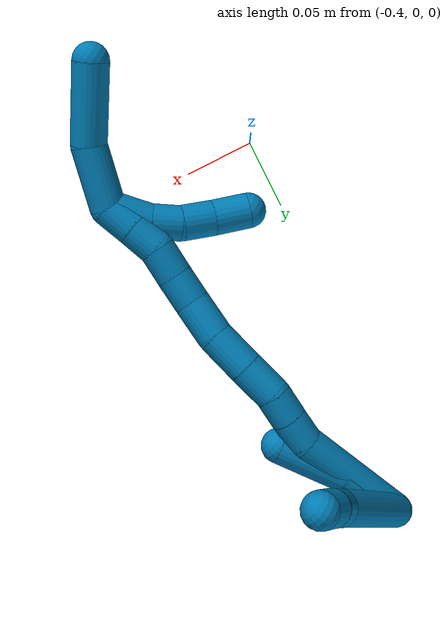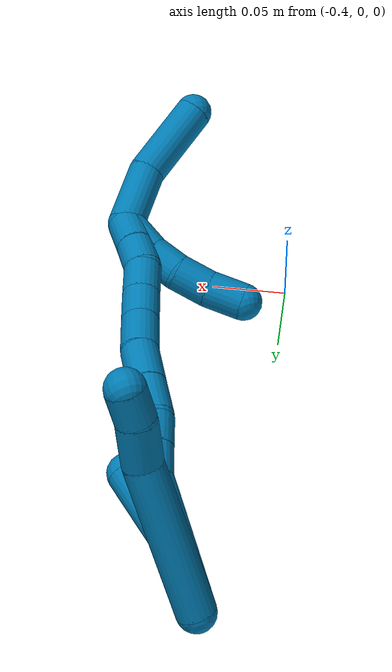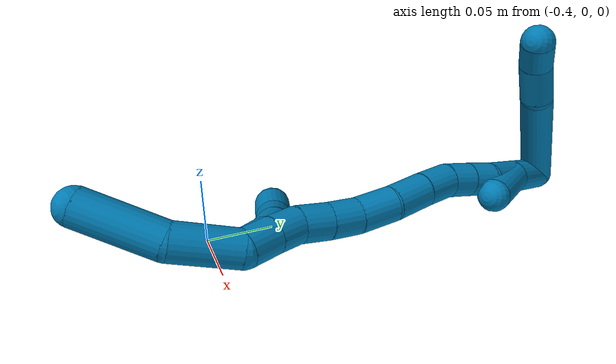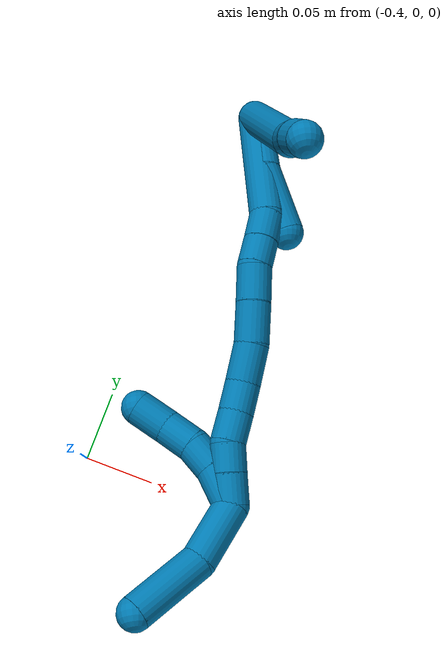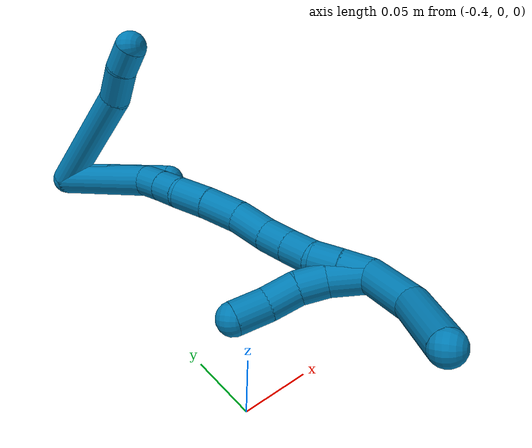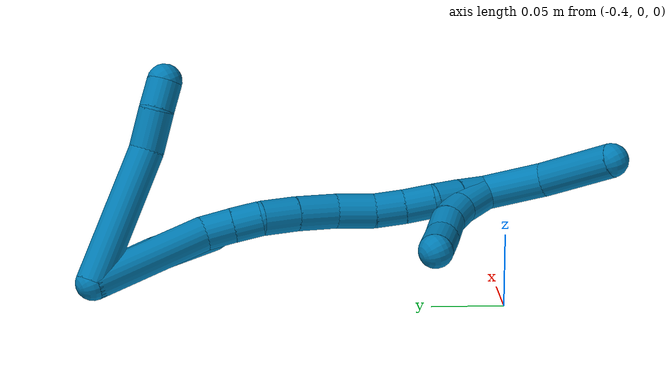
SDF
<sdf version="1.7">
 <world name="default">
  <model name="9">
   <static>0</static>
   <link name="9">
    <collision name="collision-cylinder-e_1_2_8">
     <pose>0.012373 0.032576 -0.035796 -2.40326 0.250277 -0.628709</pose>
     <geometry><cylinder><radius>0.0125</radius><length>0.099912</length></cylinder></geometry>
     <surface>
      <friction><ode><mu>1.16</mu><mu2>1.16</mu2><slip1>0</slip1><slip2>0</slip2></ode></friction>
      <contact><ode><kp>1e+06</kp><kd>1</kd><max_vel>0</max_vel><min_depth>0.001</min_depth></ode></contact>
     </surface>
    </collision>
    <visual name="visual-cylinder-e_1_2_8">
     <pose>0.012373 0.032576 -0.035796 -2.40326 0.250277 -0.628709</pose>
     <geometry><cylinder><radius>0.0125</radius><length>0.099912</length></cylinder></geometry>
     <material><ambient>0 0.490196 0.709804 1</ambient></material>
    </visual>
    <collision name="collision-cylinder-e_2_8_9">
     <pose>0.031186 0.07542 -0.079731 -2.24096 0.456856 -0.89649</pose>
     <geometry><cylinder><radius>0.0125</radius><length>0.029201</length></cylinder></geometry>
     <surface>
      <friction><ode><mu>1.16</mu><mu2>1.16</mu2><slip1>0</slip1><slip2>0</slip2></ode></friction>
      <contact><ode><kp>1e+06</kp><kd>1</kd><max_vel>0</max_vel><min_depth>0.001</min_depth></ode></contact>
     </surface>
    </collision>
    <visual name="visual-cylinder-e_2_8_9">
     <pose>0.031186 0.07542 -0.079731 -2.24096 0.456856 -0.89649</pose>
     <geometry><cylinder><radius>0.0125</radius><length>0.029201</length></cylinder></geometry>
     <material><ambient>0 0.490196 0.709804 1</ambient></material>
    </visual>
    <collision name="collision-cylinder-e_3_9_6">
     <pose>0.04055 0.093229 -0.094479 -2.29059 0.283647 -0.610436</pose>
     <geometry><cylinder><radius>0.0125</radius><length>0.020887</length></cylinder></geometry>
     <surface>
      <friction><ode><mu>1.16</mu><mu2>1.16</mu2><slip1>0</slip1><slip2>0</slip2></ode></friction>
      <contact><ode><kp>1e+06</kp><kd>1</kd><max_vel>0</max_vel><min_depth>0.001</min_depth></ode></contact>
     </surface>
    </collision>
    <visual name="visual-cylinder-e_3_9_6">
     <pose>0.04055 0.093229 -0.094479 -2.29059 0.283647 -0.610436</pose>
     <geometry><cylinder><radius>0.0125</radius><length>0.020887</length></cylinder></geometry>
     <material><ambient>0 0.490196 0.709804 1</ambient></material>
    </visual>
    <collision name="collision-cylinder-e_1_2_10">
     <pose>1.5e-05 -1e-05 -0.024268 3.14118 0.00063 1.98006</pose>
     <geometry><cylinder><radius>0.0125</radius><length>0.048536</length></cylinder></geometry>
     <surface>
      <friction><ode><mu>1.16</mu><mu2>1.16</mu2><slip1>0</slip1><slip2>0</slip2></ode></friction>
      <contact><ode><kp>1e+06</kp><kd>1</kd><max_vel>0</max_vel><min_depth>0.001</min_depth></ode></contact>
     </surface>
    </collision>
    <visual name="visual-cylinder-e_1_2_10">
     <pose>1.5e-05 -1e-05 -0.024268 3.14118 0.00063 1.98006</pose>
     <geometry><cylinder><radius>0.0125</radius><length>0.048536</length></cylinder></geometry>
     <material><ambient>0 0.490196 0.709804 1</ambient></material>
    </visual>
    <collision name="collision-cylinder-e_2_10_5">
     <pose>-0.006354 -0.000638 -0.073456 3.11682 -0.250734 -2.94562</pose>
     <geometry><cylinder><radius>0.0125</radius><length>0.051464</length></cylinder></geometry>
     <surface>
      <friction><ode><mu>1.16</mu><mu2>1.16</mu2><slip1>0</slip1><slip2>0</slip2></ode></friction>
      <contact><ode><kp>1e+06</kp><kd>1</kd><max_vel>0</max_vel><min_depth>0.001</min_depth></ode></contact>
     </surface>
    </collision>
    <visual name="visual-cylinder-e_2_10_5">
     <pose>-0.006354 -0.000638 -0.073456 3.11682 -0.250734 -2.94562</pose>
     <geometry><cylinder><radius>0.0125</radius><length>0.051464</length></cylinder></geometry>
     <material><ambient>0 0.490196 0.709804 1</ambient></material>
    </visual>
    <collision name="collision-cylinder-e_1_2_11">
     <pose>0.001262 -0.000744 -0.04356 3.12451 0.02897 2.076</pose>
     <geometry><cylinder><radius>0.0125</radius><length>0.08717</length></cylinder></geometry>
     <surface>
      <friction><ode><mu>1.16</mu><mu2>1.16</mu2><slip1>0</slip1><slip2>0</slip2></ode></friction>
      <contact><ode><kp>1e+06</kp><kd>1</kd><max_vel>0</max_vel><min_depth>0.001</min_depth></ode></contact>
     </surface>
    </collision>
    <visual name="visual-cylinder-e_1_2_11">
     <pose>0.001262 -0.000744 -0.04356 3.12451 0.02897 2.076</pose>
     <geometry><cylinder><radius>0.0125</radius><length>0.08717</length></cylinder></geometry>
     <material><ambient>0 0.490196 0.709804 1</ambient></material>
    </visual>
    <collision name="collision-cylinder-e_2_11_12">
     <pose>0.005209 -0.003778 -0.097291 2.92012 0.252041 1.70094</pose>
     <geometry><cylinder><radius>0.0125</radius><length>0.02153</length></cylinder></geometry>
     <surface>
      <friction><ode><mu>1.16</mu><mu2>1.16</mu2><slip1>0</slip1><slip2>0</slip2></ode></friction>
      <contact><ode><kp>1e+06</kp><kd>1</kd><max_vel>0</max_vel><min_depth>0.001</min_depth></ode></contact>
     </surface>
    </collision>
    <visual name="visual-cylinder-e_2_11_12">
     <pose>0.005209 -0.003778 -0.097291 2.92012 0.252041 1.70094</pose>
     <geometry><cylinder><radius>0.0125</radius><length>0.02153</length></cylinder></geometry>
     <material><ambient>0 0.490196 0.709804 1</ambient></material>
    </visual>
    <collision name="collision-cylinder-e_3_12_13">
     <pose>0.01048 -0.008569 -0.117055 2.88661 0.255137 1.5714</pose>
     <geometry><cylinder><radius>0.0125</radius><length>0.020494</length></cylinder></geometry>
     <surface>
      <friction><ode><mu>1.16</mu><mu2>1.16</mu2><slip1>0</slip1><slip2>0</slip2></ode></friction>
      <contact><ode><kp>1e+06</kp><kd>1</kd><max_vel>0</max_vel><min_depth>0.001</min_depth></ode></contact>
     </surface>
    </collision>
    <visual name="visual-cylinder-e_3_12_13">
     <pose>0.01048 -0.008569 -0.117055 2.88661 0.255137 1.5714</pose>
     <geometry><cylinder><radius>0.0125</radius><length>0.020494</length></cylinder></geometry>
     <material><ambient>0 0.490196 0.709804 1</ambient></material>
    </visual>
    <collision name="collision-cylinder-e_4_13_14">
     <pose>0.012989 -0.014867 -0.13924 2.84871 -0.005872 -0.039805</pose>
     <geometry><cylinder><radius>0.0125</radius><length>0.0263</length></cylinder></geometry>
     <surface>
      <friction><ode><mu>1.16</mu><mu2>1.16</mu2><slip1>0</slip1><slip2>0</slip2></ode></friction>
      <contact><ode><kp>1e+06</kp><kd>1</kd><max_vel>0</max_vel><min_depth>0.001</min_depth></ode></contact>
     </surface>
    </collision>
    <visual name="visual-cylinder-e_4_13_14">
     <pose>0.012989 -0.014867 -0.13924 2.84871 -0.005872 -0.039805</pose>
     <geometry><cylinder><radius>0.0125</radius><length>0.0263</length></cylinder></geometry>
     <material><ambient>0 0.490196 0.709804 1</ambient></material>
    </visual>
    <collision name="collision-cylinder-e_5_14_15">
     <pose>0.012611 -0.023766 -0.165775 2.79079 -0.020264 -0.114222</pose>
     <geometry><cylinder><radius>0.0125</radius><length>0.029706</length></cylinder></geometry>
     <surface>
      <friction><ode><mu>1.16</mu><mu2>1.16</mu2><slip1>0</slip1><slip2>0</slip2></ode></friction>
      <contact><ode><kp>1e+06</kp><kd>1</kd><max_vel>0</max_vel><min_depth>0.001</min_depth></ode></contact>
     </surface>
    </collision>
    <visual name="visual-cylinder-e_5_14_15">
     <pose>0.012611 -0.023766 -0.165775 2.79079 -0.020264 -0.114222</pose>
     <geometry><cylinder><radius>0.0125</radius><length>0.029706</length></cylinder></geometry>
     <material><ambient>0 0.490196 0.709804 1</ambient></material>
    </visual>
    <collision name="collision-cylinder-e_6_15_16">
     <pose>0.013849 -0.035125 -0.192283 2.67962 0.10921 0.456712</pose>
     <geometry><cylinder><radius>0.0125</radius><length>0.028236</length></cylinder></geometry>
     <surface>
      <friction><ode><mu>1.16</mu><mu2>1.16</mu2><slip1>0</slip1><slip2>0</slip2></ode></friction>
      <contact><ode><kp>1e+06</kp><kd>1</kd><max_vel>0</max_vel><min_depth>0.001</min_depth></ode></contact>
     </surface>
    </collision>
    <visual name="visual-cylinder-e_6_15_16">
     <pose>0.013849 -0.035125 -0.192283 2.67962 0.10921 0.456712</pose>
     <geometry><cylinder><radius>0.0125</radius><length>0.028236</length></cylinder></geometry>
     <material><ambient>0 0.490196 0.709804 1</ambient></material>
    </visual>
    <collision name="collision-cylinder-e_7_16_17">
     <pose>0.017569 -0.045015 -0.215 2.79777 0.199606 1.04628</pose>
     <geometry><cylinder><radius>0.0125</radius><length>0.022007</length></cylinder></geometry>
     <surface>
      <friction><ode><mu>1.16</mu><mu2>1.16</mu2><slip1>0</slip1><slip2>0</slip2></ode></friction>
      <contact><ode><kp>1e+06</kp><kd>1</kd><max_vel>0</max_vel><min_depth>0.001</min_depth></ode></contact>
     </surface>
    </collision>
    <visual name="visual-cylinder-e_7_16_17">
     <pose>0.017569 -0.045015 -0.215 2.79777 0.199606 1.04628</pose>
     <geometry><cylinder><radius>0.0125</radius><length>0.022007</length></cylinder></geometry>
     <material><ambient>0 0.490196 0.709804 1</ambient></material>
    </visual>
    <collision name="collision-cylinder-e_8_17_18">
     <pose>0.022452 -0.051852 -0.235328 2.83678 0.248031 1.36351</pose>
     <geometry><cylinder><radius>0.0125</radius><length>0.022005</length></cylinder></geometry>
     <surface>
      <friction><ode><mu>1.16</mu><mu2>1.16</mu2><slip1>0</slip1><slip2>0</slip2></ode></friction>
      <contact><ode><kp>1e+06</kp><kd>1</kd><max_vel>0</max_vel><min_depth>0.001</min_depth></ode></contact>
     </surface>
    </collision>
    <visual name="visual-cylinder-e_8_17_18">
     <pose>0.022452 -0.051852 -0.235328 2.83678 0.248031 1.36351</pose>
     <geometry><cylinder><radius>0.0125</radius><length>0.022005</length></cylinder></geometry>
     <material><ambient>0 0.490196 0.709804 1</ambient></material>
    </visual>
    <collision name="collision-cylinder-e_9_18_19">
     <pose>0.024488 -0.057431 -0.255462 2.90725 -0.06486 -0.53784</pose>
     <geometry><cylinder><radius>0.0125</radius><length>0.020524</length></cylinder></geometry>
     <surface>
      <friction><ode><mu>1.16</mu><mu2>1.16</mu2><slip1>0</slip1><slip2>0</slip2></ode></friction>
      <contact><ode><kp>1e+06</kp><kd>1</kd><max_vel>0</max_vel><min_depth>0.001</min_depth></ode></contact>
     </surface>
    </collision>
    <visual name="visual-cylinder-e_9_18_19">
     <pose>0.024488 -0.057431 -0.255462 2.90725 -0.06486 -0.53784</pose>
     <geometry><cylinder><radius>0.0125</radius><length>0.020524</length></cylinder></geometry>
     <material><ambient>0 0.490196 0.709804 1</ambient></material>
    </visual>
    <collision name="collision-cylinder-e_10_19_1">
     <pose>0.022711 -0.062595 -0.276021 2.88452 -0.101105 -0.746252</pose>
     <geometry><cylinder><radius>0.0125</radius><length>0.022029</length></cylinder></geometry>
     <surface>
      <friction><ode><mu>1.16</mu><mu2>1.16</mu2><slip1>0</slip1><slip2>0</slip2></ode></friction>
      <contact><ode><kp>1e+06</kp><kd>1</kd><max_vel>0</max_vel><min_depth>0.001</min_depth></ode></contact>
     </surface>
    </collision>
    <visual name="visual-cylinder-e_10_19_1">
     <pose>0.022711 -0.062595 -0.276021 2.88452 -0.101105 -0.746252</pose>
     <geometry><cylinder><radius>0.0125</radius><length>0.022029</length></cylinder></geometry>
     <material><ambient>0 0.490196 0.709804 1</ambient></material>
    </visual>
    <collision name="collision-cylinder-e_1_1_20">
     <pose>0.025915 -0.067226 -0.272705 0.131832 0.298314 0.019839</pose>
     <geometry><cylinder><radius>0.0125</radius><length>0.029368</length></cylinder></geometry>
     <surface>
      <friction><ode><mu>1.16</mu><mu2>1.16</mu2><slip1>0</slip1><slip2>0</slip2></ode></friction>
      <contact><ode><kp>1e+06</kp><kd>1</kd><max_vel>0</max_vel><min_depth>0.001</min_depth></ode></contact>
     </surface>
    </collision>
    <visual name="visual-cylinder-e_1_1_20">
     <pose>0.025915 -0.067226 -0.272705 0.131832 0.298314 0.019839</pose>
     <geometry><cylinder><radius>0.0125</radius><length>0.029368</length></cylinder></geometry>
     <material><ambient>0 0.490196 0.709804 1</ambient></material>
    </visual>
    <collision name="collision-cylinder-e_2_20_21">
     <pose>0.035186 -0.072023 -0.249648 0.312311 0.476104 0.076368</pose>
     <geometry><cylinder><radius>0.0125</radius><length>0.021622</length></cylinder></geometry>
     <surface>
      <friction><ode><mu>1.16</mu><mu2>1.16</mu2><slip1>0</slip1><slip2>0</slip2></ode></friction>
      <contact><ode><kp>1e+06</kp><kd>1</kd><max_vel>0</max_vel><min_depth>0.001</min_depth></ode></contact>
     </surface>
    </collision>
    <visual name="visual-cylinder-e_2_20_21">
     <pose>0.035186 -0.072023 -0.249648 0.312311 0.476104 0.076368</pose>
     <geometry><cylinder><radius>0.0125</radius><length>0.021622</length></cylinder></geometry>
     <material><ambient>0 0.490196 0.709804 1</ambient></material>
    </visual>
    <collision name="collision-cylinder-e_3_21_22">
     <pose>0.046489 -0.080435 -0.232125 0.577489 0.565592 0.172207</pose>
     <geometry><cylinder><radius>0.0125</radius><length>0.023691</length></cylinder></geometry>
     <surface>
      <friction><ode><mu>1.16</mu><mu2>1.16</mu2><slip1>0</slip1><slip2>0</slip2></ode></friction>
      <contact><ode><kp>1e+06</kp><kd>1</kd><max_vel>0</max_vel><min_depth>0.001</min_depth></ode></contact>
     </surface>
    </collision>
    <visual name="visual-cylinder-e_3_21_22">
     <pose>0.046489 -0.080435 -0.232125 0.577489 0.565592 0.172207</pose>
     <geometry><cylinder><radius>0.0125</radius><length>0.023691</length></cylinder></geometry>
     <material><ambient>0 0.490196 0.709804 1</ambient></material>
    </visual>
    <collision name="collision-cylinder-e_4_22_4">
     <pose>0.061238 -0.090261 -0.215342 0.479224 0.72559 0.184946</pose>
     <geometry><cylinder><radius>0.0125</radius><length>0.025319</length></cylinder></geometry>
     <surface>
      <friction><ode><mu>1.16</mu><mu2>1.16</mu2><slip1>0</slip1><slip2>0</slip2></ode></friction>
      <contact><ode><kp>1e+06</kp><kd>1</kd><max_vel>0</max_vel><min_depth>0.001</min_depth></ode></contact>
     </surface>
    </collision>
    <visual name="visual-cylinder-e_4_22_4">
     <pose>0.061238 -0.090261 -0.215342 0.479224 0.72559 0.184946</pose>
     <geometry><cylinder><radius>0.0125</radius><length>0.025319</length></cylinder></geometry>
     <material><ambient>0 0.490196 0.709804 1</ambient></material>
    </visual>
    <collision name="collision-cylinder-e_1_1_23">
     <pose>0.03293 -0.07219 -0.30437 2.77533 0.537466 1.95751</pose>
     <geometry><cylinder><radius>0.0125</radius><length>0.044265</length></cylinder></geometry>
     <surface>
      <friction><ode><mu>1.16</mu><mu2>1.16</mu2><slip1>0</slip1><slip2>0</slip2></ode></friction>
      <contact><ode><kp>1e+06</kp><kd>1</kd><max_vel>0</max_vel><min_depth>0.001</min_depth></ode></contact>
     </surface>
    </collision>
    <visual name="visual-cylinder-e_1_1_23">
     <pose>0.03293 -0.07219 -0.30437 2.77533 0.537466 1.95751</pose>
     <geometry><cylinder><radius>0.0125</radius><length>0.044265</length></cylinder></geometry>
     <material><ambient>0 0.490196 0.709804 1</ambient></material>
    </visual>
    <collision name="collision-cylinder-e_2_23_3">
     <pose>0.065709 -0.086672 -0.338174 2.69569 0.878257 2.24221</pose>
     <geometry><cylinder><radius>0.0125</radius><length>0.055735</length></cylinder></geometry>
     <surface>
      <friction><ode><mu>1.16</mu><mu2>1.16</mu2><slip1>0</slip1><slip2>0</slip2></ode></friction>
      <contact><ode><kp>1e+06</kp><kd>1</kd><max_vel>0</max_vel><min_depth>0.001</min_depth></ode></contact>
     </surface>
    </collision>
    <visual name="visual-cylinder-e_2_23_3">
     <pose>0.065709 -0.086672 -0.338174 2.69569 0.878257 2.24221</pose>
     <geometry><cylinder><radius>0.0125</radius><length>0.055735</length></cylinder></geometry>
     <material><ambient>0 0.490196 0.709804 1</ambient></material>
    </visual>
    <collision name="collision-sphere-3">
     <pose>0.087157 -0.094346 -0.354228 0 -0 0</pose>
     <geometry><sphere><radius>0.0125</radius></sphere></geometry>
     <surface>
      <friction><ode><mu>1.16</mu><mu2>1.16</mu2><slip1>0</slip1><slip2>0</slip2></ode></friction>
      <contact><ode><kp>1e+06</kp><kd>1</kd><max_vel>0</max_vel><min_depth>0.001</min_depth></ode></contact>
     </surface>
    </collision>
    <visual name="visual-sphere-3">
     <pose>0.087157 -0.094346 -0.354228 0 -0 0</pose>
     <geometry><sphere><radius>0.0125</radius></sphere></geometry>
     <material><ambient>0 0.490196 0.709804 1</ambient></material>
    </visual>
    <collision name="collision-sphere-23">
     <pose>0.044261 -0.078998 -0.322121 0 -0 0</pose>
     <geometry><sphere><radius>0.0125</radius></sphere></geometry>
     <surface>
      <friction><ode><mu>1.16</mu><mu2>1.16</mu2><slip1>0</slip1><slip2>0</slip2></ode></friction>
      <contact><ode><kp>1e+06</kp><kd>1</kd><max_vel>0</max_vel><min_depth>0.001</min_depth></ode></contact>
     </surface>
    </collision>
    <visual name="visual-sphere-23">
     <pose>0.044261 -0.078998 -0.322121 0 -0 0</pose>
     <geometry><sphere><radius>0.0125</radius></sphere></geometry>
     <material><ambient>0 0.490196 0.709804 1</ambient></material>
    </visual>
    <collision name="collision-sphere-4">
     <pose>0.069638 -0.094628 -0.206938 0 -0 0</pose>
     <geometry><sphere><radius>0.0125</radius></sphere></geometry>
     <surface>
      <friction><ode><mu>1.16</mu><mu2>1.16</mu2><slip1>0</slip1><slip2>0</slip2></ode></friction>
      <contact><ode><kp>1e+06</kp><kd>1</kd><max_vel>0</max_vel><min_depth>0.001</min_depth></ode></contact>
     </surface>
    </collision>
    <visual name="visual-sphere-4">
     <pose>0.069638 -0.094628 -0.206938 0 -0 0</pose>
     <geometry><sphere><radius>0.0125</radius></sphere></geometry>
     <material><ambient>0 0.490196 0.709804 1</ambient></material>
    </visual>
    <collision name="collision-sphere-22">
     <pose>0.052837 -0.085895 -0.223746 0 -0 0</pose>
     <geometry><sphere><radius>0.0125</radius></sphere></geometry>
     <surface>
      <friction><ode><mu>1.16</mu><mu2>1.16</mu2><slip1>0</slip1><slip2>0</slip2></ode></friction>
      <contact><ode><kp>1e+06</kp><kd>1</kd><max_vel>0</max_vel><min_depth>0.001</min_depth></ode></contact>
     </surface>
    </collision>
    <visual name="visual-sphere-22">
     <pose>0.052837 -0.085895 -0.223746 0 -0 0</pose>
     <geometry><sphere><radius>0.0125</radius></sphere></geometry>
     <material><ambient>0 0.490196 0.709804 1</ambient></material>
    </visual>
    <collision name="collision-sphere-21">
     <pose>0.040141 -0.074975 -0.240504 0 -0 0</pose>
     <geometry><sphere><radius>0.0125</radius></sphere></geometry>
     <surface>
      <friction><ode><mu>1.16</mu><mu2>1.16</mu2><slip1>0</slip1><slip2>0</slip2></ode></friction>
      <contact><ode><kp>1e+06</kp><kd>1</kd><max_vel>0</max_vel><min_depth>0.001</min_depth></ode></contact>
     </surface>
    </collision>
    <visual name="visual-sphere-21">
     <pose>0.040141 -0.074975 -0.240504 0 -0 0</pose>
     <geometry><sphere><radius>0.0125</radius></sphere></geometry>
     <material><ambient>0 0.490196 0.709804 1</ambient></material>
    </visual>
    <collision name="collision-sphere-20">
     <pose>0.030231 -0.069071 -0.258792 0 -0 0</pose>
     <geometry><sphere><radius>0.0125</radius></sphere></geometry>
     <surface>
      <friction><ode><mu>1.16</mu><mu2>1.16</mu2><slip1>0</slip1><slip2>0</slip2></ode></friction>
      <contact><ode><kp>1e+06</kp><kd>1</kd><max_vel>0</max_vel><min_depth>0.001</min_depth></ode></contact>
     </surface>
    </collision>
    <visual name="visual-sphere-20">
     <pose>0.030231 -0.069071 -0.258792 0 -0 0</pose>
     <geometry><sphere><radius>0.0125</radius></sphere></geometry>
     <material><ambient>0 0.490196 0.709804 1</ambient></material>
    </visual>
    <collision name="collision-sphere-5">
     <pose>-0.012738 -0.001255 -0.098375 0 -0 0</pose>
     <geometry><sphere><radius>0.0125</radius></sphere></geometry>
     <surface>
      <friction><ode><mu>1.16</mu><mu2>1.16</mu2><slip1>0</slip1><slip2>0</slip2></ode></friction>
      <contact><ode><kp>1e+06</kp><kd>1</kd><max_vel>0</max_vel><min_depth>0.001</min_depth></ode></contact>
     </surface>
    </collision>
    <visual name="visual-sphere-5">
     <pose>-0.012738 -0.001255 -0.098375 0 -0 0</pose>
     <geometry><sphere><radius>0.0125</radius></sphere></geometry>
     <material><ambient>0 0.490196 0.709804 1</ambient></material>
    </visual>
    <collision name="collision-sphere-10">
     <pose>3.1e-05 -2e-05 -0.048536 0 -0 0</pose>
     <geometry><sphere><radius>0.0125</radius></sphere></geometry>
     <surface>
      <friction><ode><mu>1.16</mu><mu2>1.16</mu2><slip1>0</slip1><slip2>0</slip2></ode></friction>
      <contact><ode><kp>1e+06</kp><kd>1</kd><max_vel>0</max_vel><min_depth>0.001</min_depth></ode></contact>
     </surface>
    </collision>
    <visual name="visual-sphere-10">
     <pose>3.1e-05 -2e-05 -0.048536 0 -0 0</pose>
     <geometry><sphere><radius>0.0125</radius></sphere></geometry>
     <material><ambient>0 0.490196 0.709804 1</ambient></material>
    </visual>
    <collision name="collision-sphere-6">
     <pose>0.043472 0.100768 -0.101088 0 -0 0</pose>
     <geometry><sphere><radius>0.0125</radius></sphere></geometry>
     <surface>
      <friction><ode><mu>1.16</mu><mu2>1.16</mu2><slip1>0</slip1><slip2>0</slip2></ode></friction>
      <contact><ode><kp>1e+06</kp><kd>1</kd><max_vel>0</max_vel><min_depth>0.001</min_depth></ode></contact>
     </surface>
    </collision>
    <visual name="visual-sphere-6">
     <pose>0.043472 0.100768 -0.101088 0 -0 0</pose>
     <geometry><sphere><radius>0.0125</radius></sphere></geometry>
     <material><ambient>0 0.490196 0.709804 1</ambient></material>
    </visual>
    <collision name="collision-sphere-9">
     <pose>0.037627 0.08569 -0.087869 0 -0 0</pose>
     <geometry><sphere><radius>0.0125</radius></sphere></geometry>
     <surface>
      <friction><ode><mu>1.16</mu><mu2>1.16</mu2><slip1>0</slip1><slip2>0</slip2></ode></friction>
      <contact><ode><kp>1e+06</kp><kd>1</kd><max_vel>0</max_vel><min_depth>0.001</min_depth></ode></contact>
     </surface>
    </collision>
    <visual name="visual-sphere-9">
     <pose>0.037627 0.08569 -0.087869 0 -0 0</pose>
     <geometry><sphere><radius>0.0125</radius></sphere></geometry>
     <material><ambient>0 0.490196 0.709804 1</ambient></material>
    </visual>
    <collision name="collision-sphere-2">
     <geometry><sphere><radius>0.0125</radius></sphere></geometry>
     <surface>
      <friction><ode><mu>1.16</mu><mu2>1.16</mu2><slip1>0</slip1><slip2>0</slip2></ode></friction>
      <contact><ode><kp>1e+06</kp><kd>1</kd><max_vel>0</max_vel><min_depth>0.001</min_depth></ode></contact>
     </surface>
    </collision>
    <visual name="visual-sphere-2">
     <geometry><sphere><radius>0.0125</radius></sphere></geometry>
     <material><ambient>0 0.490196 0.709804 1</ambient></material>
    </visual>
    <collision name="collision-sphere-19">
     <pose>0.023823 -0.059809 -0.265423 0 -0 0</pose>
     <geometry><sphere><radius>0.0125</radius></sphere></geometry>
     <surface>
      <friction><ode><mu>1.16</mu><mu2>1.16</mu2><slip1>0</slip1><slip2>0</slip2></ode></friction>
      <contact><ode><kp>1e+06</kp><kd>1</kd><max_vel>0</max_vel><min_depth>0.001</min_depth></ode></contact>
     </surface>
    </collision>
    <visual name="visual-sphere-19">
     <pose>0.023823 -0.059809 -0.265423 0 -0 0</pose>
     <geometry><sphere><radius>0.0125</radius></sphere></geometry>
     <material><ambient>0 0.490196 0.709804 1</ambient></material>
    </visual>
    <collision name="collision-sphere-8">
     <pose>0.024746 0.065151 -0.071592 0 -0 0</pose>
     <geometry><sphere><radius>0.0125</radius></sphere></geometry>
     <surface>
      <friction><ode><mu>1.16</mu><mu2>1.16</mu2><slip1>0</slip1><slip2>0</slip2></ode></friction>
      <contact><ode><kp>1e+06</kp><kd>1</kd><max_vel>0</max_vel><min_depth>0.001</min_depth></ode></contact>
     </surface>
    </collision>
    <visual name="visual-sphere-8">
     <pose>0.024746 0.065151 -0.071592 0 -0 0</pose>
     <geometry><sphere><radius>0.0125</radius></sphere></geometry>
     <material><ambient>0 0.490196 0.709804 1</ambient></material>
    </visual>
    <collision name="collision-sphere-11">
     <pose>0.002525 -0.001488 -0.08712 0 -0 0</pose>
     <geometry><sphere><radius>0.0125</radius></sphere></geometry>
     <surface>
      <friction><ode><mu>1.16</mu><mu2>1.16</mu2><slip1>0</slip1><slip2>0</slip2></ode></friction>
      <contact><ode><kp>1e+06</kp><kd>1</kd><max_vel>0</max_vel><min_depth>0.001</min_depth></ode></contact>
     </surface>
    </collision>
    <visual name="visual-sphere-11">
     <pose>0.002525 -0.001488 -0.08712 0 -0 0</pose>
     <geometry><sphere><radius>0.0125</radius></sphere></geometry>
     <material><ambient>0 0.490196 0.709804 1</ambient></material>
    </visual>
    <collision name="collision-sphere-12">
     <pose>0.007894 -0.006068 -0.107461 0 -0 0</pose>
     <geometry><sphere><radius>0.0125</radius></sphere></geometry>
     <surface>
      <friction><ode><mu>1.16</mu><mu2>1.16</mu2><slip1>0</slip1><slip2>0</slip2></ode></friction>
      <contact><ode><kp>1e+06</kp><kd>1</kd><max_vel>0</max_vel><min_depth>0.001</min_depth></ode></contact>
     </surface>
    </collision>
    <visual name="visual-sphere-12">
     <pose>0.007894 -0.006068 -0.107461 0 -0 0</pose>
     <geometry><sphere><radius>0.0125</radius></sphere></geometry>
     <material><ambient>0 0.490196 0.709804 1</ambient></material>
    </visual>
    <collision name="collision-sphere-13">
     <pose>0.013066 -0.01107 -0.12665 0 -0 0</pose>
     <geometry><sphere><radius>0.0125</radius></sphere></geometry>
     <surface>
      <friction><ode><mu>1.16</mu><mu2>1.16</mu2><slip1>0</slip1><slip2>0</slip2></ode></friction>
      <contact><ode><kp>1e+06</kp><kd>1</kd><max_vel>0</max_vel><min_depth>0.001</min_depth></ode></contact>
     </surface>
    </collision>
    <visual name="visual-sphere-13">
     <pose>0.013066 -0.01107 -0.12665 0 -0 0</pose>
     <geometry><sphere><radius>0.0125</radius></sphere></geometry>
     <material><ambient>0 0.490196 0.709804 1</ambient></material>
    </visual>
    <collision name="collision-sphere-14">
     <pose>0.012912 -0.018663 -0.151829 0 -0 0</pose>
     <geometry><sphere><radius>0.0125</radius></sphere></geometry>
     <surface>
      <friction><ode><mu>1.16</mu><mu2>1.16</mu2><slip1>0</slip1><slip2>0</slip2></ode></friction>
      <contact><ode><kp>1e+06</kp><kd>1</kd><max_vel>0</max_vel><min_depth>0.001</min_depth></ode></contact>
     </surface>
    </collision>
    <visual name="visual-sphere-14">
     <pose>0.012912 -0.018663 -0.151829 0 -0 0</pose>
     <geometry><sphere><radius>0.0125</radius></sphere></geometry>
     <material><ambient>0 0.490196 0.709804 1</ambient></material>
    </visual>
    <collision name="collision-sphere-15">
     <pose>0.01231 -0.02887 -0.17972 0 -0 0</pose>
     <geometry><sphere><radius>0.0125</radius></sphere></geometry>
     <surface>
      <friction><ode><mu>1.16</mu><mu2>1.16</mu2><slip1>0</slip1><slip2>0</slip2></ode></friction>
      <contact><ode><kp>1e+06</kp><kd>1</kd><max_vel>0</max_vel><min_depth>0.001</min_depth></ode></contact>
     </surface>
    </collision>
    <visual name="visual-sphere-15">
     <pose>0.01231 -0.02887 -0.17972 0 -0 0</pose>
     <geometry><sphere><radius>0.0125</radius></sphere></geometry>
     <material><ambient>0 0.490196 0.709804 1</ambient></material>
    </visual>
    <collision name="collision-sphere-16">
     <pose>0.015387 -0.04138 -0.204846 0 -0 0</pose>
     <geometry><sphere><radius>0.0125</radius></sphere></geometry>
     <surface>
      <friction><ode><mu>1.16</mu><mu2>1.16</mu2><slip1>0</slip1><slip2>0</slip2></ode></friction>
      <contact><ode><kp>1e+06</kp><kd>1</kd><max_vel>0</max_vel><min_depth>0.001</min_depth></ode></contact>
     </surface>
    </collision>
    <visual name="visual-sphere-16">
     <pose>0.015387 -0.04138 -0.204846 0 -0 0</pose>
     <geometry><sphere><radius>0.0125</radius></sphere></geometry>
     <material><ambient>0 0.490196 0.709804 1</ambient></material>
    </visual>
    <collision name="collision-sphere-17">
     <pose>0.019751 -0.048651 -0.225153 0 -0 0</pose>
     <geometry><sphere><radius>0.0125</radius></sphere></geometry>
     <surface>
      <friction><ode><mu>1.16</mu><mu2>1.16</mu2><slip1>0</slip1><slip2>0</slip2></ode></friction>
      <contact><ode><kp>1e+06</kp><kd>1</kd><max_vel>0</max_vel><min_depth>0.001</min_depth></ode></contact>
     </surface>
    </collision>
    <visual name="visual-sphere-17">
     <pose>0.019751 -0.048651 -0.225153 0 -0 0</pose>
     <geometry><sphere><radius>0.0125</radius></sphere></geometry>
     <material><ambient>0 0.490196 0.709804 1</ambient></material>
    </visual>
    <collision name="collision-sphere-18">
     <pose>0.025153 -0.055053 -0.245502 0 -0 0</pose>
     <geometry><sphere><radius>0.0125</radius></sphere></geometry>
     <surface>
      <friction><ode><mu>1.16</mu><mu2>1.16</mu2><slip1>0</slip1><slip2>0</slip2></ode></friction>
      <contact><ode><kp>1e+06</kp><kd>1</kd><max_vel>0</max_vel><min_depth>0.001</min_depth></ode></contact>
     </surface>
    </collision>
    <visual name="visual-sphere-18">
     <pose>0.025153 -0.055053 -0.245502 0 -0 0</pose>
     <geometry><sphere><radius>0.0125</radius></sphere></geometry>
     <material><ambient>0 0.490196 0.709804 1</ambient></material>
    </visual>
    <collision name="collision-sphere-1">
     <pose>0.0216 -0.065381 -0.286619 0 -0 0</pose>
     <geometry><sphere><radius>0.0125</radius></sphere></geometry>
     <surface>
      <friction><ode><mu>1.16</mu><mu2>1.16</mu2><slip1>0</slip1><slip2>0</slip2></ode></friction>
      <contact><ode><kp>1e+06</kp><kd>1</kd><max_vel>0</max_vel><min_depth>0.001</min_depth></ode></contact>
     </surface>
    </collision>
    <visual name="visual-sphere-1">
     <pose>0.0216 -0.065381 -0.286619 0 -0 0</pose>
     <geometry><sphere><radius>0.0125</radius></sphere></geometry>
     <material><ambient>0 0.490196 0.709804 1</ambient></material>
    </visual>
    <inertial>
     <pose>0.020519 -0.020637 -0.150741 0 -0 0</pose>
     <mass>0.75</mass>
     <inertia>
      <ixx>7.7e-05</ixx>
      <ixy>0</ixy>
      <ixz>0</ixz>
      <iyy>4.4e-05</iyy>
      <iyz>0</iyz>
      <izz>-0.000125</izz>
     </inertia>
    </inertial>
   </link>
   <pose>-0.37513 0.282257 0.012486 1.92054 -0.544904 -2.84851</pose>
  </model>
 </world>
</sdf>
